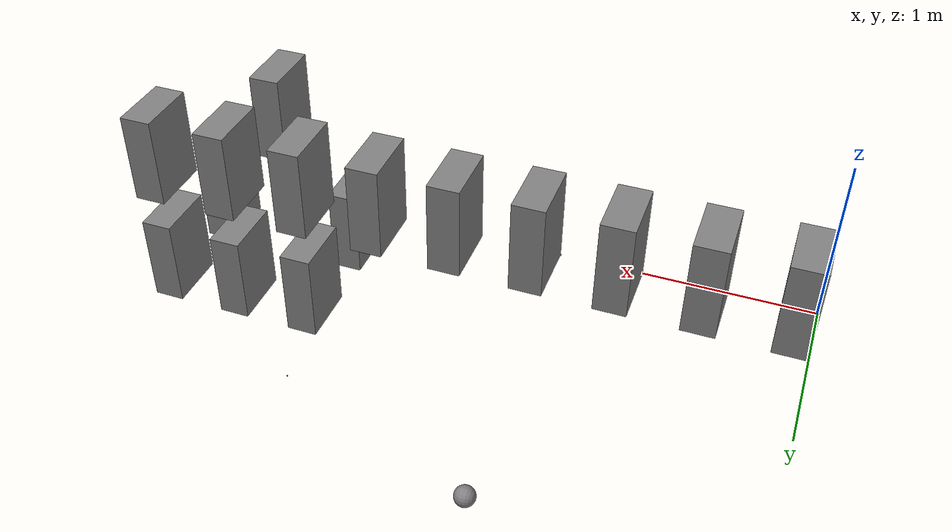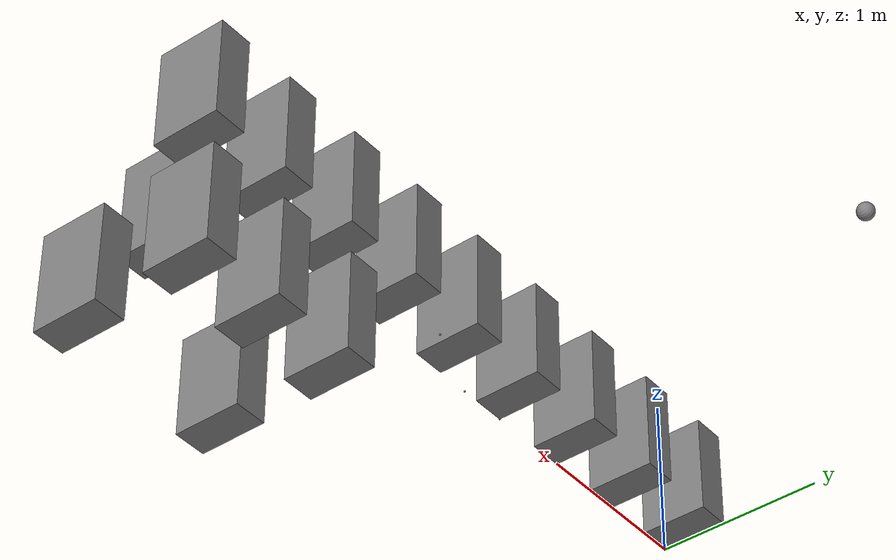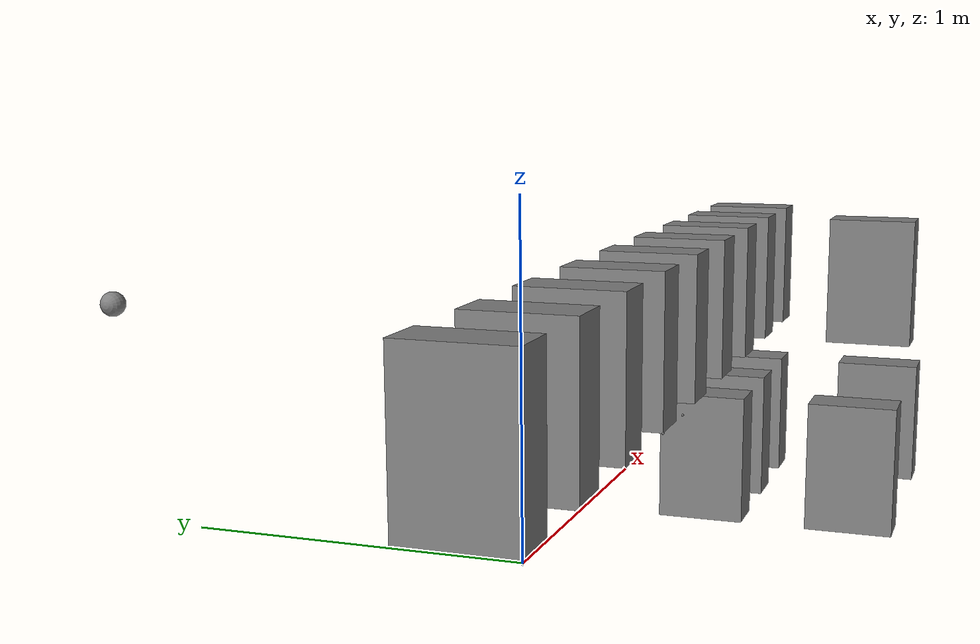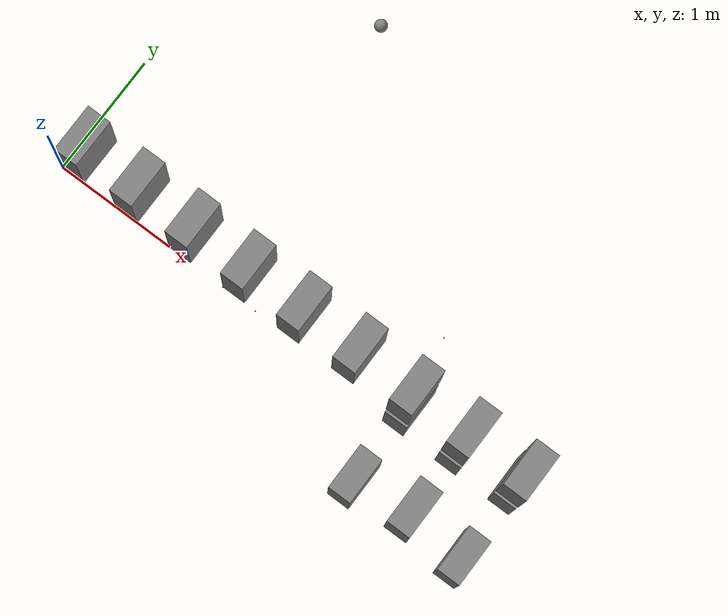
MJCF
<!-- For validating dynamics of joints:

* free, ball, slide, hinge joints
* stacked joints (e.g. hinge + slide, ball + slide, etc)
* n-link kinematic chains
* limits, armature, damping
-->
<mujoco model="pendula">
  <compiler autolimits="true"/>

  <option timestep="0.02">
    <flag contact="disable" />
  </option>

  <default>
    <geom type="box" pos=".1 .2 .3" size=".1 .2 .3"/>
    <joint damping="0.25" stiffness="0.1"/>
  </default>

  <worldbody>
    <site name="origin"/>
    <camera pos="0 1.5 0.8" xyaxes="-1 0 0 0 -0.2 .8"/>
    <camera mode="targetbodycom" pos="1 -1 2"/>
    <camera mode="targetbodycom" target="body" pos="0 -1 2"/>
    <camera mode="targetbody" target="body" pos="0 -1 -2"/>

    <!-- a single free body -->
    <body pos="0 0 0">
      <camera mode="fixed" pos="0 0.1 0.1" euler="2.7 0 0"/>
      <camera pos="-3 0 1" xyaxes="0 -1 0 1 0 2" mode="trackcom"/>
      <camera pos="-3 0 1" xyaxes="0 -1 0 1 0 2" mode="track"/>
      <freejoint/>
      <geom/>
    </body>

    <!-- a single ball joint with a limit -->
    <body name="body" pos="0.5 0 0">
      <joint name="joint1" type="ball" range="0 35"/>
      <site name="s1" pos="1.3 0 0"/>
      <geom/>
    </body>

    <!-- a single slide joint with a limit -->
    <body pos="1.0 0 0">
      <joint name="joint2" type="slide" axis="0.1 0.2 0.3" range="-1 1"/>
      <site name="s2"/>
      <geom/>
    </body>

    <!-- a single hinge joint with a limit -->
    <body pos="1.5 0 0">
      <joint name="joint3" type="hinge" axis="0.1 0.2 0.3" range="-35 50"/>
      <site name="s3" quat="1 0 1 0"/>
      <geom/>
    </body>

    <!-- stacked joint: hinge + slide -->
    <body pos="2.0 0 0">
      <joint name="joint4" type="hinge" axis="0.1 0.2 0.3"/>
      <joint name="joint5" type="slide" axis="0.4 0.5 0.6" range="0 1"/>
      <geom/>
    </body>

    <!-- stacked joint: slide + ball -->
    <body pos="2.5 0 0">
      <joint name="joint6" type="slide" axis="0.4 0.5 0.6" range="0 1"/>
      <joint type="ball"/>
      <geom/>
    </body>

    <!-- triple pendulum of hinges -->
    <body pos="3.0 0 0">
      <joint name="joint7" axis="0.1 0.2 0.3" type="hinge"/>
      <geom/>
      <body pos="0 0 -0.8">
        <joint name="joint8" axis="0.4 0.5 0.6" type="hinge" armature="0.02" range="-20 20"/>
        <geom/>
        <body pos="0 -0.7 0">
          <joint name="joint9" axis="0.7 0.8 0.9" type="hinge" damping="0.75" range="-30 30"/>
          <site name="s4" pos="0 1.5 0" quat="1 0 1 0"/>
          <geom/>
        </body>
      </body>
    </body>

    <!-- cherry pendulum: two bodies attached to same parent body -->
    <body pos="3.5 0 0">
      <joint name="joint10" type="ball" damping="0.5" />
      <geom/>
      <body pos="0 0 -0.8">
        <joint name="joint11" axis="0.4 0.5 0.6" type="hinge" armature="0.02" range="-20 20"/>
        <geom/>
      </body>
      <body pos="0 -0.7 0">
        <joint name="joint12" axis="0.7 0.8 0.9" type="hinge" damping="0.75" range="-30 30"/>
        <geom/>
      </body>
    </body>

    <!-- falling pendulum -->
    <body pos="4.0 0 0">
      <freejoint name="freejoint"/>
      <geom/>
      <body pos="0 0 -0.8">
        <joint name="joint13" axis="0.4 0.5 0.6" type="slide" armature="0.02" range="-0.4 0.6"/>
        <geom/>
        <body pos="0 -0.7 0">
          <joint name="joint14" axis="0.7 0.8 0.9" type="hinge" damping="0.75" range="-30 30"/>
          <geom/>
        </body>
      </body>
    </body>

    <!-- triple pendulum of hinges with gravcomp -->

    <body mocap="true">
      <geom type="sphere" size="0.05"/>
    </body>
    <body mocap="true" pos="1.0 2.0 0.5" quat="1 0 1 0">
      <geom type="sphere" size="0.05"/>
    </body>
  </worldbody>

  <actuator>
    <velocity gear="1 1 1 1 1 1" joint="joint1" name="act1"/>
    <velocity gear="1 1 1 1 1 1" joint="joint1" name="act2"/>
    <velocity gear="1 1 1 1 1 1" joint="joint1" name="act3"/>
    <damper gear="1 1 1 1 1 1" ctrlrange="0 10" joint="joint2" name="act4"/>
    <velocity gear="1 1 1 1 1 1" ctrlrange="0 10" joint="joint3" name="act5"/>
    <velocity gear="1 1 1 1 1 1" ctrlrange="0 10" jointinparent="joint1"/>
    <damper gear="1 1 1 1 1 1" ctrlrange="0 10" jointinparent="freejoint"/>
  </actuator>
</mujoco>
